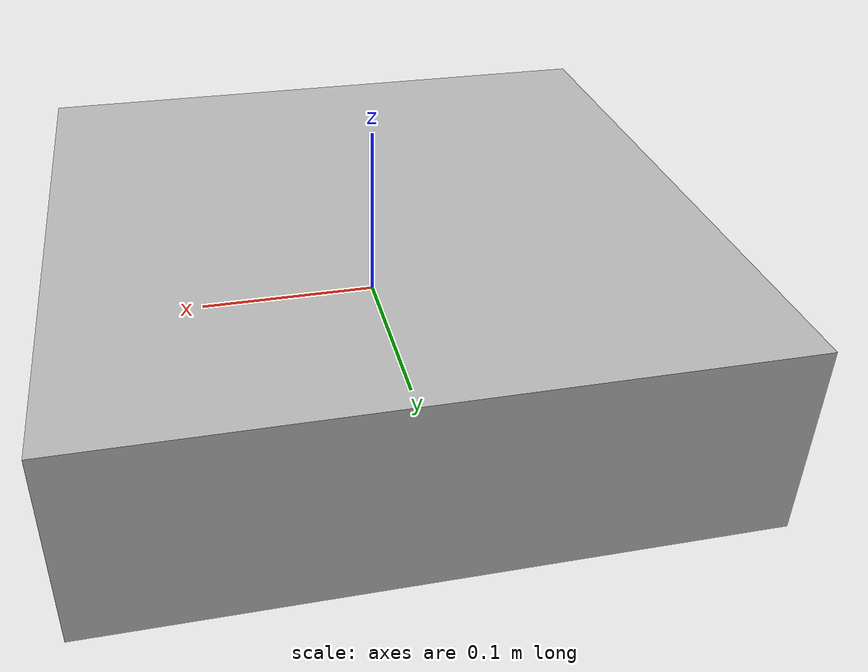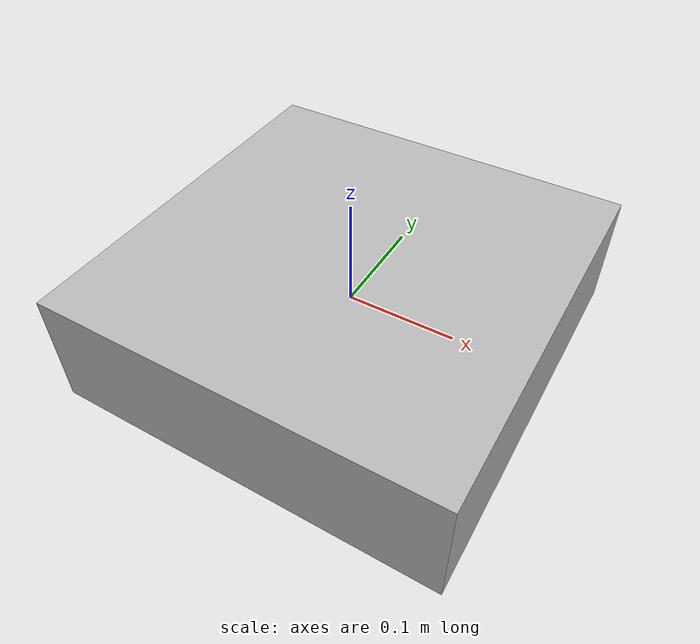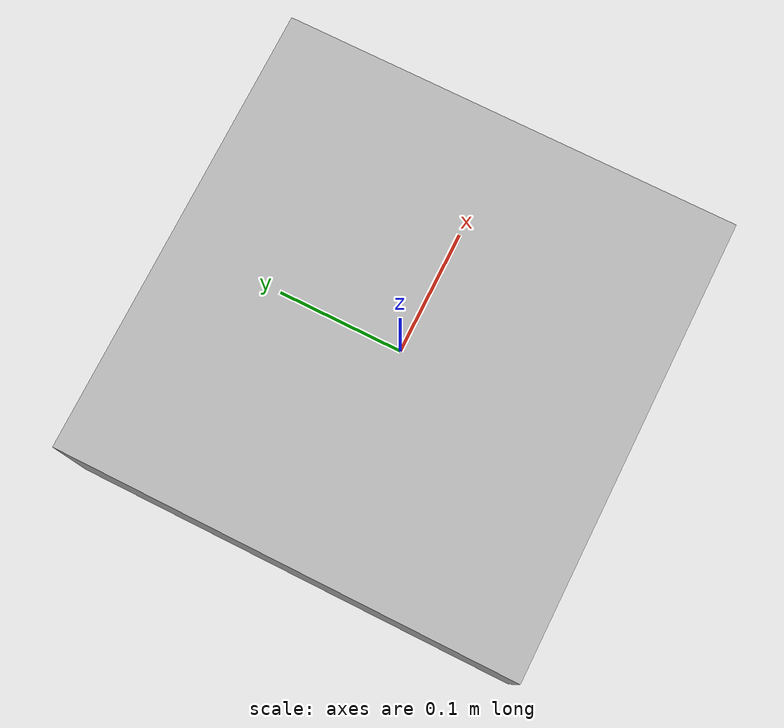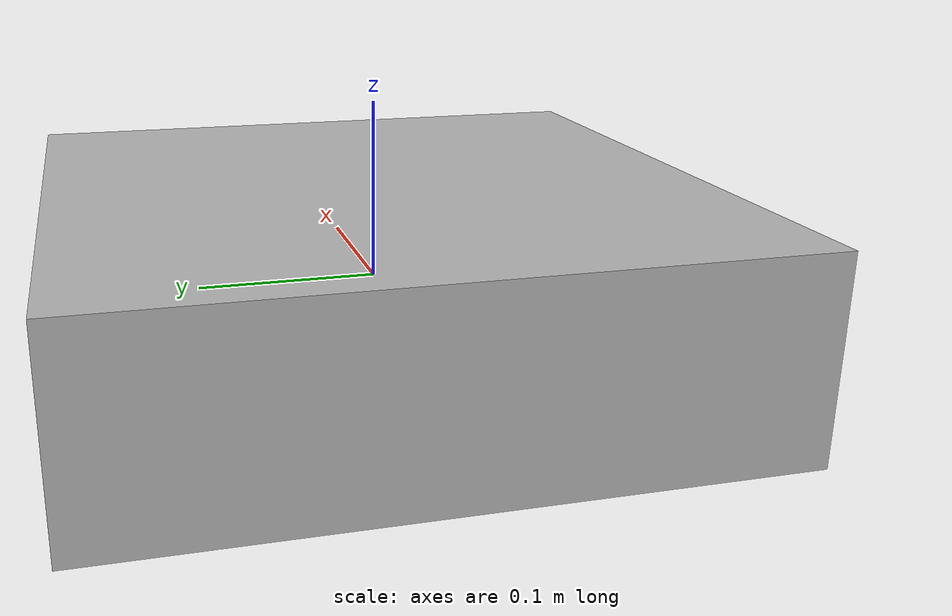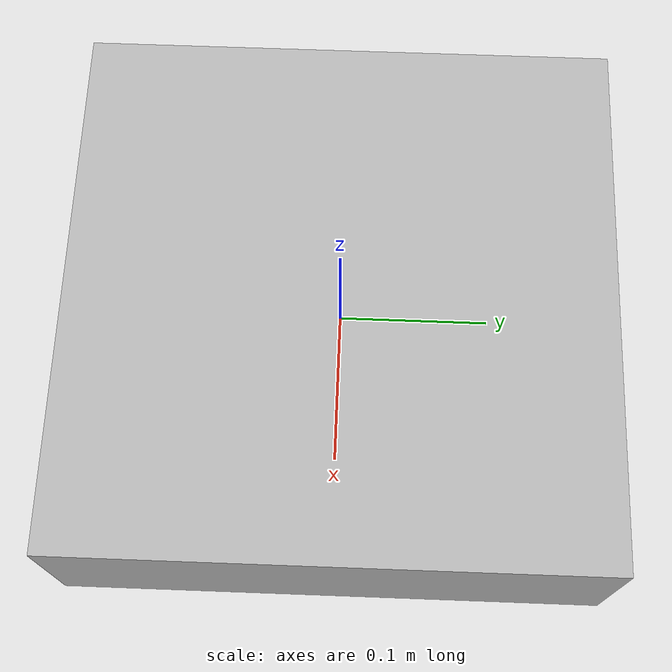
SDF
<?xml version="1.0"?>
<sdf version="1.6">
  <model name="px4vision">
    <static>true</static>
    <link name="link">
      <visual name="visual">
        <geometry>
          <mesh>
            <uri>model://px4vision/meshes/body.dae</uri>
          </mesh>
        </geometry>
      </visual>
    </link>
  </model>
</sdf>
